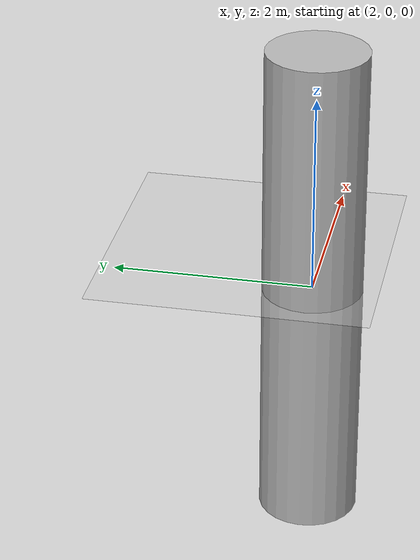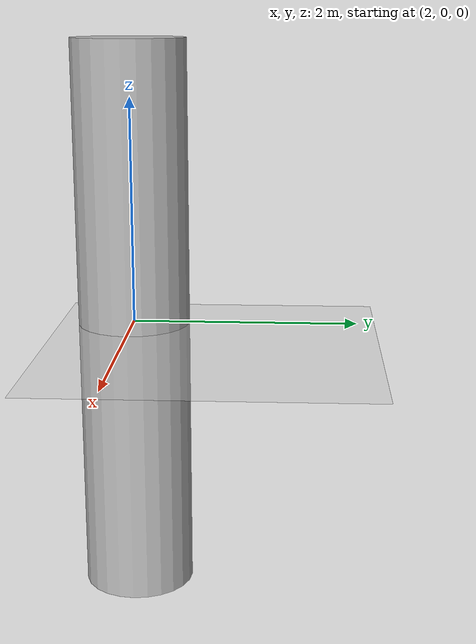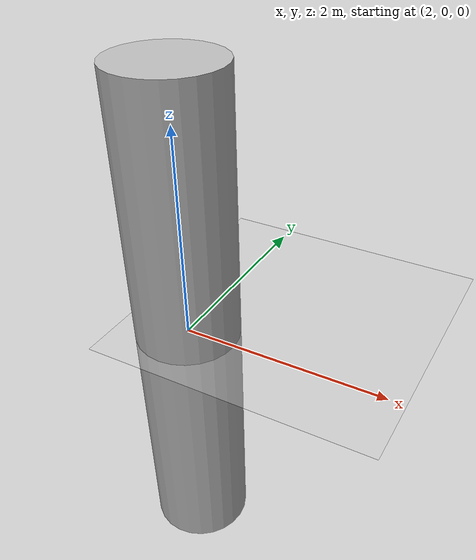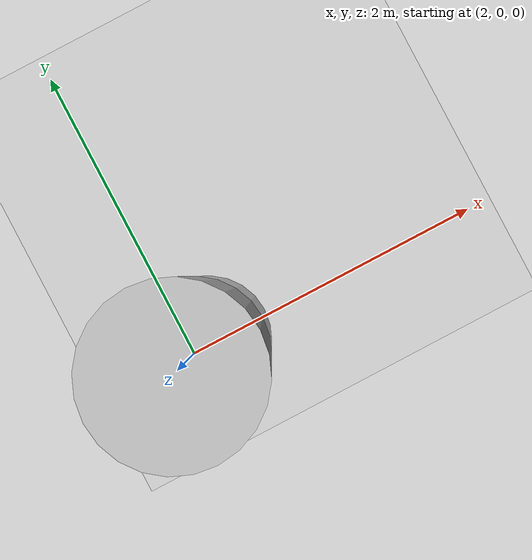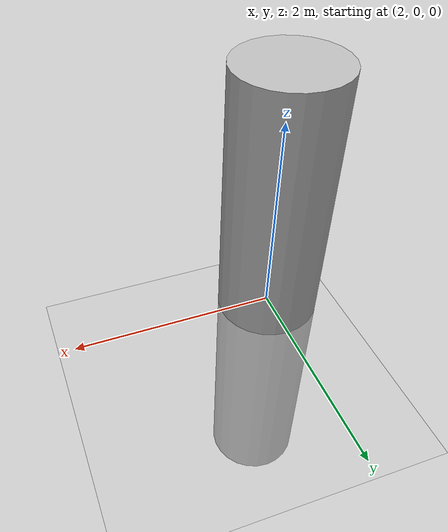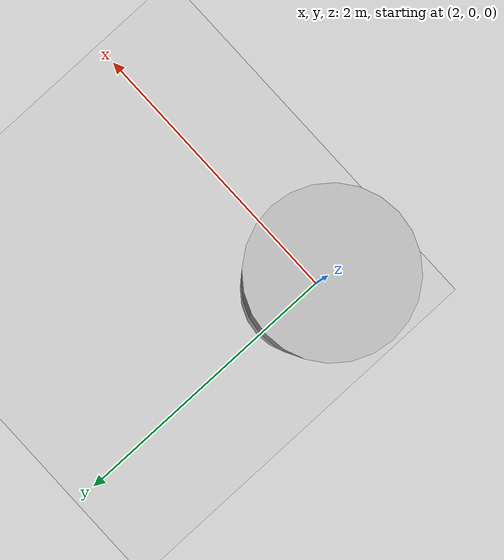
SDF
<?xml version="1.0"?>
<sdf version="1.4">
  <world name="obstacles">
    <include>
      <uri>model://ground_plane</uri>
    </include>
    <include>
      <uri>model://sun</uri>
    </include>

    <model name="pillar0">
      <pose>2 0 0 0 0 0</pose>
      <static>true</static>
      <link name="body">
        <collision name="collision">
          <geometry>
            <cylinder>
              <radius>0.5</radius>
              <length>5</length>
            </cylinder>
          </geometry>
        </collision>
        <visual name="visual">
          <geometry>
            <cylinder>
              <radius>0.5</radius>
              <length>5</length>
            </cylinder>
          </geometry>
          <material>
            <script>
              <uri>model://rock/materials/scripts</uri>
              <uri>model://rock/materials/textures</uri>
              <name>Rock/Diffuse</name>
            </script>
          </material>
        </visual>
      </link>
    </model>

    <physics type="bullet">
      <real_time_update_rate>0.000000</real_time_update_rate>
      <max_step_size>0.001000</max_step_size>
    </physics>
  </world>
</sdf>
